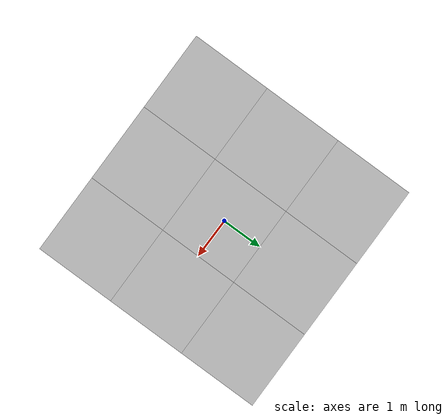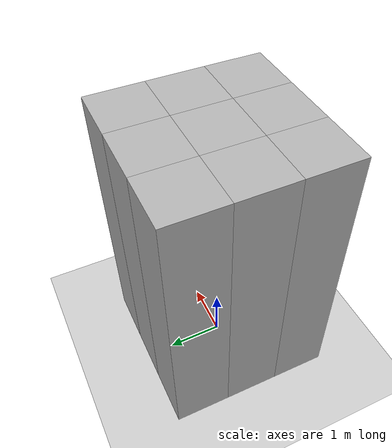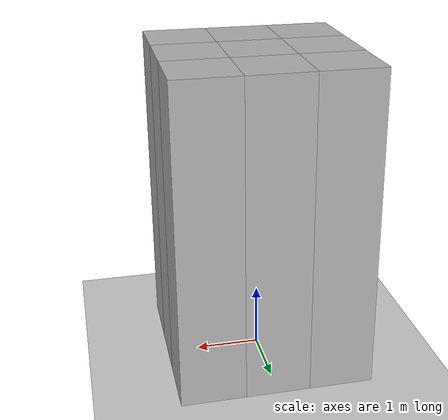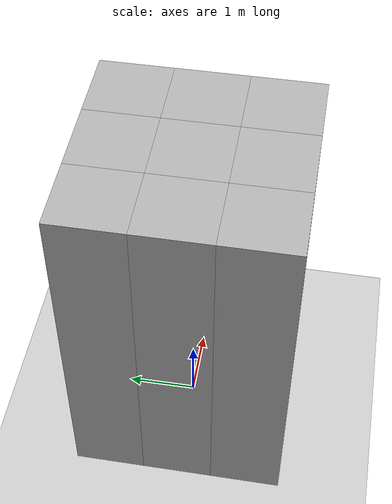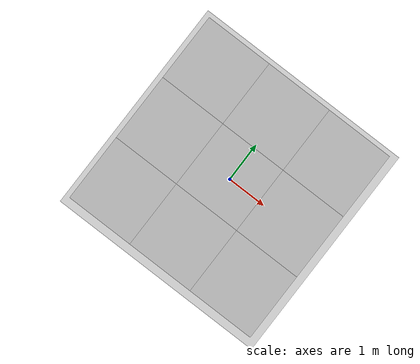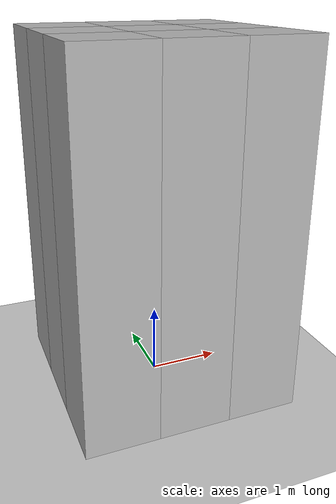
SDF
<sdf version="1.9">
  <world name="default_walls">
    <physics type="ode">
      <max_step_size>0.004</max_step_size>
      <real_time_factor>1.0</real_time_factor>
      <real_time_update_rate>250</real_time_update_rate>
    </physics>
    <plugin name="gz::sim::systems::Physics" filename="gz-sim-physics-system" />
    <plugin name="gz::sim::systems::UserCommands" filename="gz-sim-user-commands-system" />
    <plugin name="gz::sim::systems::SceneBroadcaster" filename="gz-sim-scene-broadcaster-system" />
    <plugin name="gz::sim::systems::Contact" filename="gz-sim-contact-system" />
    <plugin name="gz::sim::systems::Imu" filename="gz-sim-imu-system" />
    <plugin name="gz::sim::systems::AirPressure" filename="gz-sim-air-pressure-system" />
    <plugin name="gz::sim::systems::ApplyLinkWrench" filename="gz-sim-apply-link-wrench-system" />
    <plugin name="gz::sim::systems::Sensors" filename="gz-sim-sensors-system">
      <render_engine>ogre2</render_engine>
    </plugin>
    <gravity>0 0 -9.8</gravity>
    <magnetic_field>6e-06 2.3e-05 -4.2e-05</magnetic_field>
    <atmosphere type="adiabatic" />
    <scene>
      <grid>false</grid>
      <ambient>0.4 0.4 0.4 1</ambient>
      <background>0.7 0.7 0.7 1</background>
      <shadows>true</shadows>
    </scene>
    <model name="ground_plane">
      <static>true</static>
      <link name="link">
        <collision name="collision">
          <geometry>
            <plane>
              <normal>0 0 1</normal>
              <size>1 1</size>
            </plane>
          </geometry>
          <surface>
            <friction>
              <ode />
            </friction>
            <bounce />
            <contact />
          </surface>
        </collision>
        <visual name="visual">
          <geometry>
            <plane>
              <normal>0 0 1</normal>
              <size>100 100</size>
            </plane>
          </geometry>
          <material>
            <ambient>0.8 0.8 0.8 1</ambient>
            <diffuse>0.8 0.8 0.8 1</diffuse>
            <specular>0.8 0.8 0.8 1</specular>
          </material>
        </visual>
        <pose>0 0 0 0 -0 0</pose>
        <inertial>
          <pose>0 0 0 0 -0 0</pose>
          <mass>1</mass>
          <inertia>
            <ixx>1</ixx>
            <ixy>0</ixy>
            <ixz>0</ixz>
            <iyy>1</iyy>
            <iyz>0</iyz>
            <izz>1</izz>
          </inertia>
        </inertial>
        <enable_wind>false</enable_wind>
      </link>
      <pose>0 0 0 0 -0 0</pose>
      <self_collide>false</self_collide>
    </model>
    <light name="sunUTC" type="directional">
      <pose>0 0 500 0 -0 0</pose>
      <cast_shadows>true</cast_shadows>
      <intensity>1</intensity>
      <direction>0.001 0.625 -0.78</direction>
      <diffuse>0.904 0.904 0.904 1</diffuse>
      <specular>0.271 0.271 0.271 1</specular>
      <attenuation>
        <range>2000</range>
        <linear>0</linear>
        <constant>1</constant>
        <quadratic>0</quadratic>
      </attenuation>
      <spot>
        <inner_angle>0</inner_angle>
        <outer_angle>0</outer_angle>
        <falloff>0</falloff>
      </spot>
    </light>
    <spherical_coordinates>
      <surface_model>EARTH_WGS84</surface_model>
      <world_frame_orientation>ENU</world_frame_orientation>
      <latitude_deg>47.397971057728974</latitude_deg>
      <longitude_deg> 8.546163739800146</longitude_deg>
      <elevation>0</elevation>
    </spherical_coordinates>

                <model name="wall_6_6_fb9a5b">
                    <pose>-1.000 -1.000 2.500 0 0 0</pose>
                    <static>true</static>
                    <link name="link_wall_6_6_fb9a5b">
                    <collision name="col_wall_6_6_fb9a5b">
                        <geometry>
                            <box>
                                <size>1.000 1.000 5.000</size>
                            </box>
                        </geometry>
                    </collision>
                    <visual name="vis_wall_6_6_fb9a5b">
                        <geometry>
                            <box>
                                <size>1.000 1.000 5.000</size>
                            </box>
                        </geometry>
                        <material>
                            <ambient>0.3 0.3 0.3 1</ambient>
                            <diffuse>0.7 0.7 0.7 1</diffuse>
                            <specular>1 1 1 1</specular>
                        </material>
                    </visual>
                    </link>
                    <self_collide>false</self_collide>
                </model>

                <model name="wall_6_7_f078cc">
                    <pose>0.000 -1.000 2.500 0 0 0</pose>
                    <static>true</static>
                    <link name="link_wall_6_7_f078cc">
                    <collision name="col_wall_6_7_f078cc">
                        <geometry>
                            <box>
                                <size>1.000 1.000 5.000</size>
                            </box>
                        </geometry>
                    </collision>
                    <visual name="vis_wall_6_7_f078cc">
                        <geometry>
                            <box>
                                <size>1.000 1.000 5.000</size>
                            </box>
                        </geometry>
                        <material>
                            <ambient>0.3 0.3 0.3 1</ambient>
                            <diffuse>0.7 0.7 0.7 1</diffuse>
                            <specular>1 1 1 1</specular>
                        </material>
                    </visual>
                    </link>
                    <self_collide>false</self_collide>
                </model>

                <model name="wall_6_8_1139e6">
                    <pose>1.000 -1.000 2.500 0 0 0</pose>
                    <static>true</static>
                    <link name="link_wall_6_8_1139e6">
                    <collision name="col_wall_6_8_1139e6">
                        <geometry>
                            <box>
                                <size>1.000 1.000 5.000</size>
                            </box>
                        </geometry>
                    </collision>
                    <visual name="vis_wall_6_8_1139e6">
                        <geometry>
                            <box>
                                <size>1.000 1.000 5.000</size>
                            </box>
                        </geometry>
                        <material>
                            <ambient>0.3 0.3 0.3 1</ambient>
                            <diffuse>0.7 0.7 0.7 1</diffuse>
                            <specular>1 1 1 1</specular>
                        </material>
                    </visual>
                    </link>
                    <self_collide>false</self_collide>
                </model>

                <model name="wall_7_6_2131cb">
                    <pose>-1.000 0.000 2.500 0 0 0</pose>
                    <static>true</static>
                    <link name="link_wall_7_6_2131cb">
                    <collision name="col_wall_7_6_2131cb">
                        <geometry>
                            <box>
                                <size>1.000 1.000 5.000</size>
                            </box>
                        </geometry>
                    </collision>
                    <visual name="vis_wall_7_6_2131cb">
                        <geometry>
                            <box>
                                <size>1.000 1.000 5.000</size>
                            </box>
                        </geometry>
                        <material>
                            <ambient>0.3 0.3 0.3 1</ambient>
                            <diffuse>0.7 0.7 0.7 1</diffuse>
                            <specular>1 1 1 1</specular>
                        </material>
                    </visual>
                    </link>
                    <self_collide>false</self_collide>
                </model>

                <model name="wall_7_7_60a425">
                    <pose>0.000 0.000 2.500 0 0 0</pose>
                    <static>true</static>
                    <link name="link_wall_7_7_60a425">
                    <collision name="col_wall_7_7_60a425">
                        <geometry>
                            <box>
                                <size>1.000 1.000 5.000</size>
                            </box>
                        </geometry>
                    </collision>
                    <visual name="vis_wall_7_7_60a425">
                        <geometry>
                            <box>
                                <size>1.000 1.000 5.000</size>
                            </box>
                        </geometry>
                        <material>
                            <ambient>0.3 0.3 0.3 1</ambient>
                            <diffuse>0.7 0.7 0.7 1</diffuse>
                            <specular>1 1 1 1</specular>
                        </material>
                    </visual>
                    </link>
                    <self_collide>false</self_collide>
                </model>

                <model name="wall_7_8_a62ca0">
                    <pose>1.000 0.000 2.500 0 0 0</pose>
                    <static>true</static>
                    <link name="link_wall_7_8_a62ca0">
                    <collision name="col_wall_7_8_a62ca0">
                        <geometry>
                            <box>
                                <size>1.000 1.000 5.000</size>
                            </box>
                        </geometry>
                    </collision>
                    <visual name="vis_wall_7_8_a62ca0">
                        <geometry>
                            <box>
                                <size>1.000 1.000 5.000</size>
                            </box>
                        </geometry>
                        <material>
                            <ambient>0.3 0.3 0.3 1</ambient>
                            <diffuse>0.7 0.7 0.7 1</diffuse>
                            <specular>1 1 1 1</specular>
                        </material>
                    </visual>
                    </link>
                    <self_collide>false</self_collide>
                </model>

                <model name="wall_8_6_42e793">
                    <pose>-1.000 1.000 2.500 0 0 0</pose>
                    <static>true</static>
                    <link name="link_wall_8_6_42e793">
                    <collision name="col_wall_8_6_42e793">
                        <geometry>
                            <box>
                                <size>1.000 1.000 5.000</size>
                            </box>
                        </geometry>
                    </collision>
                    <visual name="vis_wall_8_6_42e793">
                        <geometry>
                            <box>
                                <size>1.000 1.000 5.000</size>
                            </box>
                        </geometry>
                        <material>
                            <ambient>0.3 0.3 0.3 1</ambient>
                            <diffuse>0.7 0.7 0.7 1</diffuse>
                            <specular>1 1 1 1</specular>
                        </material>
                    </visual>
                    </link>
                    <self_collide>false</self_collide>
                </model>

                <model name="wall_8_7_b48f2d">
                    <pose>0.000 1.000 2.500 0 0 0</pose>
                    <static>true</static>
                    <link name="link_wall_8_7_b48f2d">
                    <collision name="col_wall_8_7_b48f2d">
                        <geometry>
                            <box>
                                <size>1.000 1.000 5.000</size>
                            </box>
                        </geometry>
                    </collision>
                    <visual name="vis_wall_8_7_b48f2d">
                        <geometry>
                            <box>
                                <size>1.000 1.000 5.000</size>
                            </box>
                        </geometry>
                        <material>
                            <ambient>0.3 0.3 0.3 1</ambient>
                            <diffuse>0.7 0.7 0.7 1</diffuse>
                            <specular>1 1 1 1</specular>
                        </material>
                    </visual>
                    </link>
                    <self_collide>false</self_collide>
                </model>

                <model name="wall_8_8_9741fb">
                    <pose>1.000 1.000 2.500 0 0 0</pose>
                    <static>true</static>
                    <link name="link_wall_8_8_9741fb">
                    <collision name="col_wall_8_8_9741fb">
                        <geometry>
                            <box>
                                <size>1.000 1.000 5.000</size>
                            </box>
                        </geometry>
                    </collision>
                    <visual name="vis_wall_8_8_9741fb">
                        <geometry>
                            <box>
                                <size>1.000 1.000 5.000</size>
                            </box>
                        </geometry>
                        <material>
                            <ambient>0.3 0.3 0.3 1</ambient>
                            <diffuse>0.7 0.7 0.7 1</diffuse>
                            <specular>1 1 1 1</specular>
                        </material>
                    </visual>
                    </link>
                    <self_collide>false</self_collide>
                </model>
</world>
</sdf>
